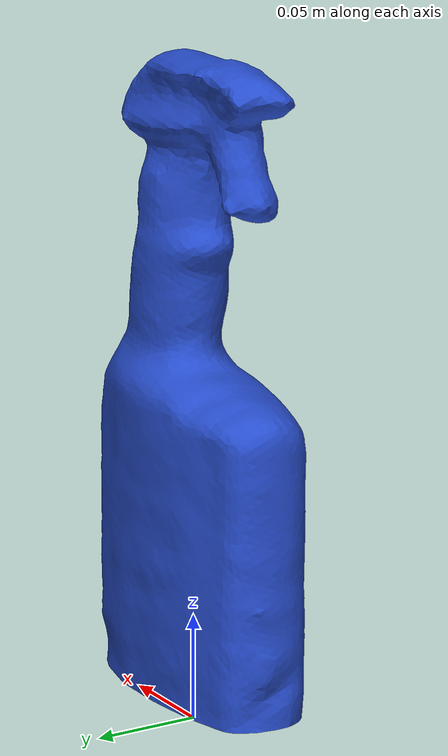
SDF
<?xml version='1.0'?>
<sdf version='1.4'>
<model name='spraybottle'>
<pose>0 0 0.0145 0 0 0</pose>
<link name='link'>
  <inertial>
    <mass>1</mass>
    <inertia>
      <ixx>1</ixx>
      <ixy>0</ixy>
      <ixz>0</ixz>
      <iyy>1</iyy>
      <iyz>0</iyz>
      <izz>1</izz>
    </inertia>
  </inertial>
  <collision name='collision'>
    <geometry>
      <box>
        <size>0.029 0.029 0.029</size>
      </box>
    </geometry>
    <max_contacts>10</max_contacts>
    <surface>
      <bounce/>
      <friction>
        <ode/>
      </friction>
      <contact>
        <ode/>
      </contact>
    </surface>
  </collision>
  <visual name='visual'>
    <geometry>
      <mesh>
        <uri>file:///media/natanaso/Data/Stuff/Research/ActiveSemanticLocalization/code/ros/tbotsim_catkin/src/tbotsim/meshes/spraybottle.dae</uri>
      </mesh>
    </geometry>
    <material>
      <script>
        <uri>file://media/materials/scripts/gazebo.material</uri>
        <name>Gazebo/Blue</name>
      </script>
    </material>
  </visual>
  <velocity_decay>
    <linear>0</linear>
    <angular>0</angular>
  </velocity_decay>
  <self_collide>0</self_collide>
  <kinematic>0</kinematic>
  <gravity>1</gravity>
</link>
<static>0</static>
</model>
</sdf>
